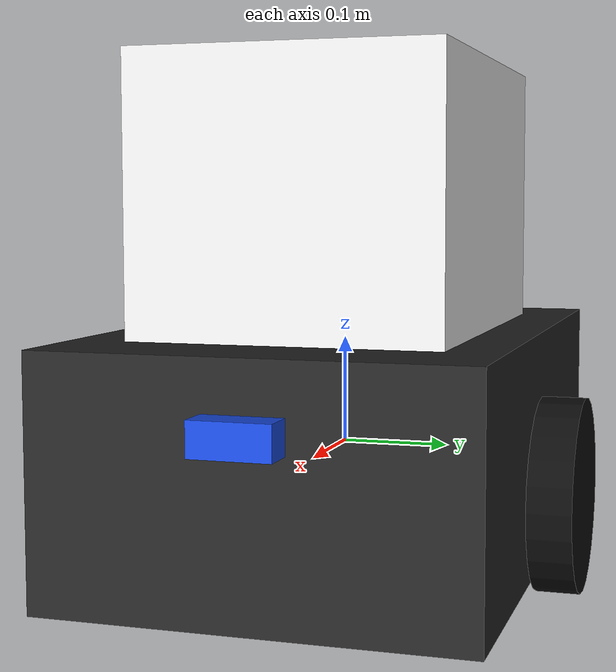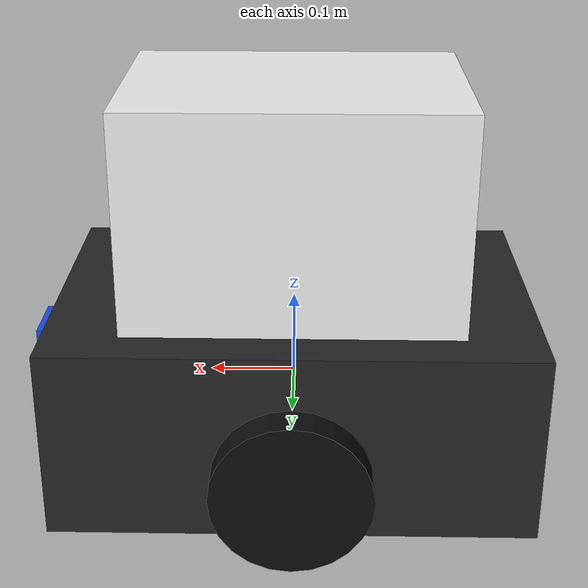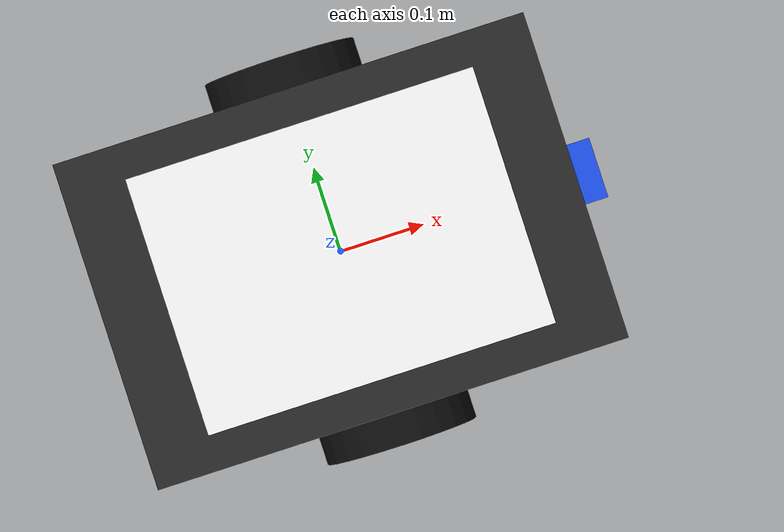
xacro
<?xml version="1.0"?>
<robot xmlns:xacro="http://www.ros.org/wiki/xacro" name="rf_delivery_bot">

  <!-- Base Link / Chassis -->
  <link name="base_link">
    <visual>
      <geometry><box size="0.55 0.38 0.22"/></geometry>
      <material name="dark_grey"><color rgba="0.15 0.15 0.15 1"/></material>
    </visual>
    <collision>
      <geometry><box size="0.55 0.38 0.22"/></geometry>
    </collision>
    <inertial>
      <mass value="5.0"/>
      <inertia ixx="0.08" ixy="0.0" ixz="0.0" iyy="0.1" iyz="0.0" izz="0.1"/>
    </inertial>
  </link>

  <!-- Delivery Tier Compartment -->
  <link name="delivery_tier">
    <visual>
      <geometry><box size="0.38 0.28 0.25"/></geometry>
      <material name="white"><color rgba="0.95 0.95 0.95 1"/></material>
    </visual>
    <collision>
      <geometry><box size="0.38 0.28 0.25"/></geometry>
    </collision>
    <inertial>
      <mass value="1.0"/>
      <inertia ixx="0.01" ixy="0.0" ixz="0.0" iyy="0.01" iyz="0.0" izz="0.01"/>
    </inertial>
  </link>

  <joint name="tier_joint" type="fixed">
    <parent link="base_link"/>
    <child link="delivery_tier"/>
    <origin xyz="0 0 0.235" rpy="0 0 0"/>
  </joint>

  <!-- Left Wheel -->
  <link name="left_wheel">
    <visual>
      <geometry><cylinder radius="0.09" length="0.04"/></geometry>
      <material name="black"><color rgba="0.05 0.05 0.05 1"/></material>
    </visual>
    <collision>
      <geometry><cylinder radius="0.09" length="0.04"/></geometry>
    </collision>
    <inertial>
      <mass value="0.4"/>
      <inertia ixx="0.001" ixy="0.0" ixz="0.0" iyy="0.001" iyz="0.0" izz="0.001"/>
    </inertial>
  </link>

  <joint name="left_wheel_joint" type="continuous">
    <parent link="base_link"/>
    <child link="left_wheel"/>
    <origin xyz="0 0.21 -0.04" rpy="-1.5707 0 0"/>
    <axis xyz="0 0 1"/>
  </joint>

  <!-- Right Wheel -->
  <link name="right_wheel">
    <visual>
      <geometry><cylinder radius="0.09" length="0.04"/></geometry>
      <material name="black"><color rgba="0.05 0.05 0.05 1"/></material>
    </visual>
    <collision>
      <geometry><cylinder radius="0.09" length="0.04"/></geometry>
    </collision>
    <inertial>
      <mass value="0.4"/>
      <inertia ixx="0.001" ixy="0.0" ixz="0.0" iyy="0.001" iyz="0.0" izz="0.001"/>
    </inertial>
  </link>

  <joint name="right_wheel_joint" type="continuous">
    <parent link="base_link"/>
    <child link="right_wheel"/>
    <origin xyz="0 -0.21 -0.04" rpy="-1.5707 0 0"/>
    <axis xyz="0 0 1"/>
  </joint>

  <!-- Front Caster Wheel -->
  <link name="front_caster">
    <visual>
      <geometry><sphere radius="0.045"/></geometry>
      <material name="silver"><color rgba="0.8 0.8 0.8 1"/></material>
    </visual>
    <collision>
      <geometry><sphere radius="0.045"/></geometry>
    </collision>
    <inertial>
      <mass value="0.2"/>
      <inertia ixx="0.0001" ixy="0.0" ixz="0.0" iyy="0.0001" iyz="0.0" izz="0.0001"/>
    </inertial>
  </link>

  <joint name="caster_joint" type="fixed">
    <parent link="base_link"/>
    <child link="front_caster"/>
    <origin xyz="0.2 0 -0.045" rpy="0 0 0"/>
  </joint>

  <!-- Ultrasonic Sensor Link -->
  <link name="ultrasonic_link">
    <visual>
      <geometry><box size="0.03 0.07 0.03"/></geometry>
      <material name="blue"><color rgba="0.1 0.3 0.9 1"/></material>
    </visual>
    <collision>
      <geometry><box size="0.03 0.07 0.03"/></geometry>
    </collision>
  </link>

  <joint name="ultrasonic_joint" type="fixed">
    <parent link="base_link"/>
    <child link="ultrasonic_link"/>
    <origin xyz="0.29 0 0.05" rpy="0 0 0"/>
  </joint>

  <!-- Gazebo Diff Drive Plugin -->
  <gazebo>
    <plugin filename="libignition-gazebo-diff-drive-system.so" name="ignition::gazebo::systems::DiffDrive">
      <left_joint>left_wheel_joint</left_joint>
      <right_joint>right_wheel_joint</right_joint>
      <wheel_separation>0.42</wheel_separation>
      <wheel_radius>0.09</wheel_radius>
      <topic>/cmd_vel</topic>
      <odom_topic>/odom</odom_topic>
      <tf_topic>/tf</tf_topic>
      <frame_id>odom</frame_id>
      <child_frame_id>base_link</child_frame_id>
    </plugin>
  </gazebo>

  <!-- Ultrasonic Ray Sensor Plugin -->
  <gazebo reference="ultrasonic_link">
    <sensor name="ultrasonic_sensor" type="ray">
      <pose>0 0 0 0 0 0</pose>
      <ray>
        <scan>
          <horizontal>
            <samples>1</samples>
            <resolution>1</resolution>
            <min_angle>0</min_angle>
            <max_angle>0</max_angle>
          </horizontal>
        </scan>
        <range>
          <min>0.05</min>
          <max>3.0</max>
          <resolution>0.01</resolution>
        </range>
      </ray>
      <always_on>1</always_on>
      <update_rate>10</update_rate>
      <visualize>true</visualize>
      <topic>/ultrasonic/range</topic>
    </sensor>
  </gazebo>

</robot>
